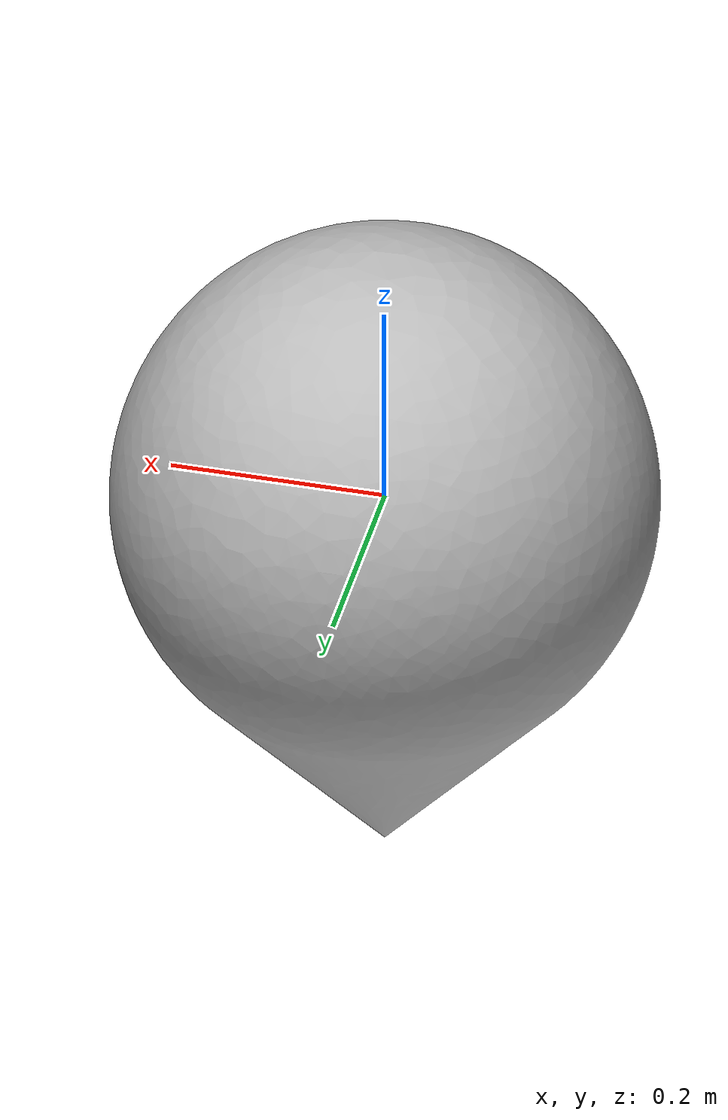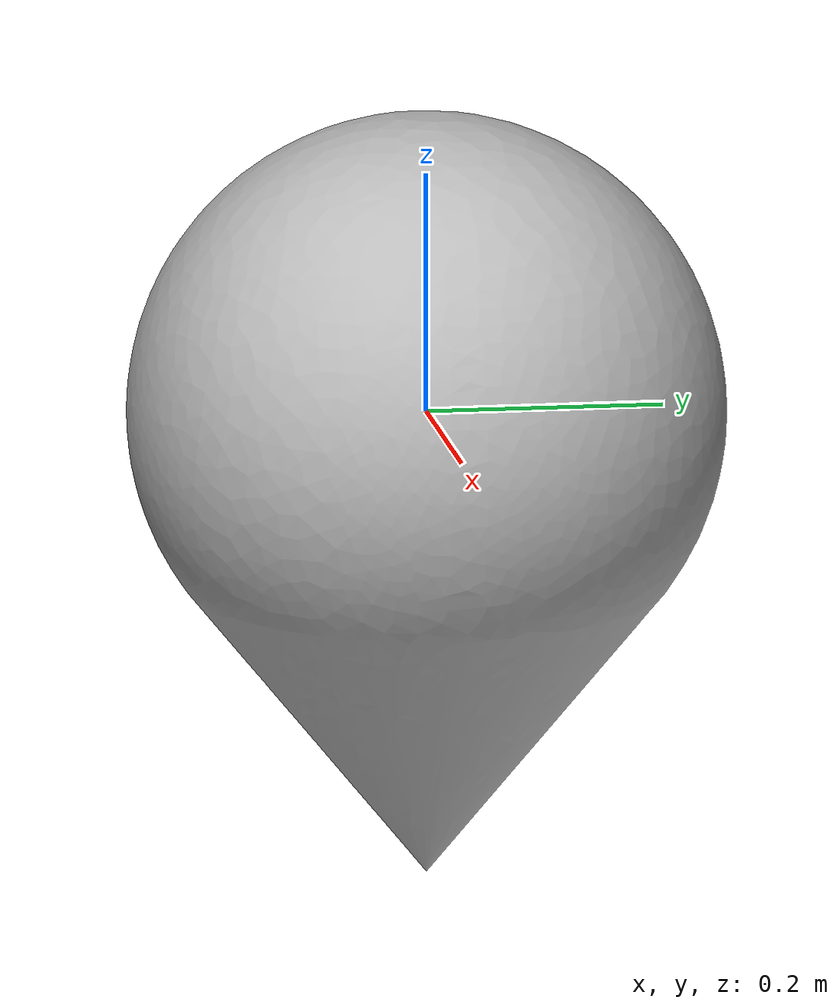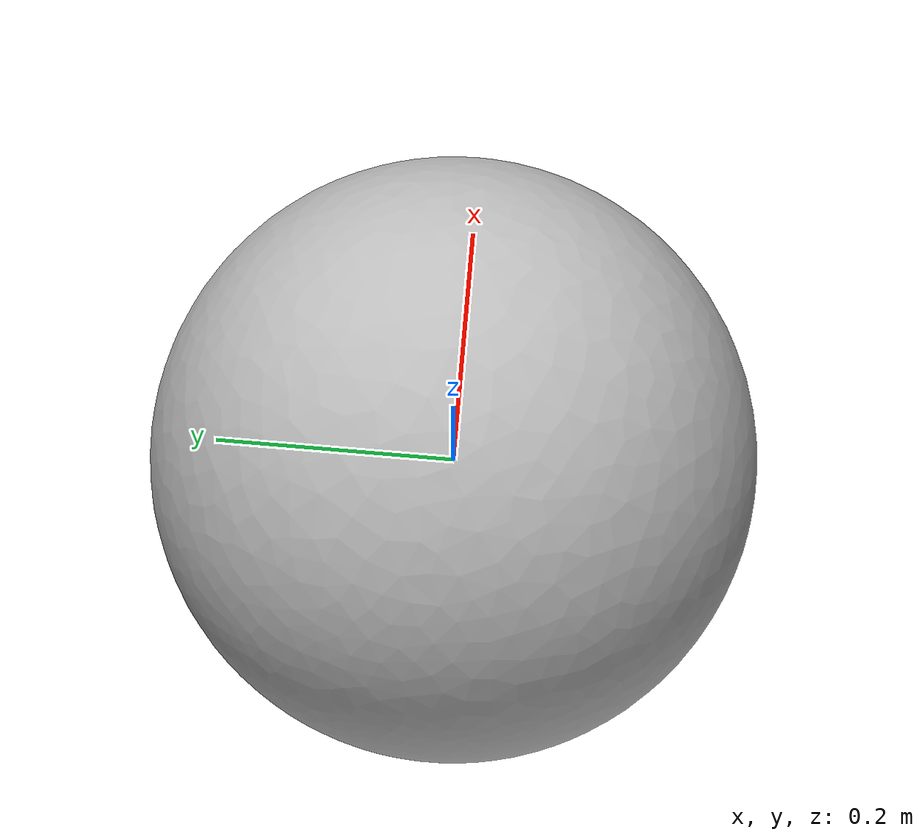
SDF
<?xml version="1.0" ?>
<sdf version="1.5">
  <model name="balloon_red">
	  <static>0</static>
	<link name="link">
      <pose>0 0 0 0 0 0</pose>
      <inertial>
        <mass>0.3</mass>
        <inertia>
          <ixx>0.08611666666666669</ixx>
          <ixy>0</ixy>
          <ixz>0</ixz>
          <iyy>0.08611666666666669</iyy>
          <iyz>0</iyz>
          <izz>0.08611666666666669</izz>
        </inertia>
      </inertial>

      <collision name="collision_balloon">
        <pose>0 0 0 0 0 0</pose>
        <geometry>
          <mesh>
            <uri>model://balloon_red/meshes/balonek.stl</uri>
          </mesh>
        </geometry>
        <surface>
          <contact>
            <poissons_ratio>0.347</poissons_ratio>
            <elastic_modulus>8.8e+09</elastic_modulus>
            <ode>
              <kp>100000</kp>
              <kd>100</kd>
              <max_vel>100.0</max_vel>
              <min_depth>0.001</min_depth>
            </ode>
          </contact>
          <friction>
            <torsional>
              <coefficient>1.0</coefficient>
              <use_patch_radius>0</use_patch_radius>
              <surface_radius>0.01</surface_radius>
            </torsional>
          </friction>
        </surface>
      </collision>

      <visual name="balloon">
        <pose>0 0 0 0 0 0</pose>
        <geometry>
          <mesh>
            <uri>model://balloon_red/meshes/balonek.stl</uri>
          </mesh>
        </geometry>
        <material>
          <script>
            <uri>model://balloon_red/scripts</uri>
            <uri>model://balloon_red/materials/textures</uri>
            <name>BalloonRed/Balloon</name>
          </script>
        </material>
      </visual>

      <gravity>1</gravity>
    </link>
  </model>
</sdf>
